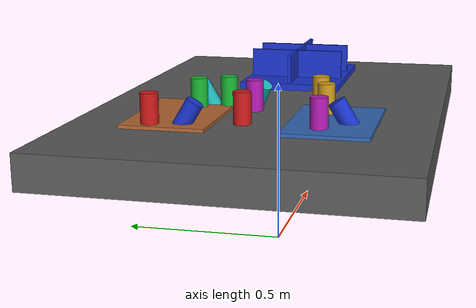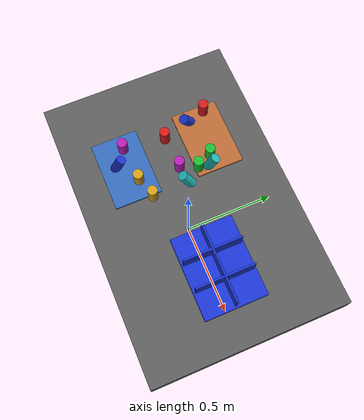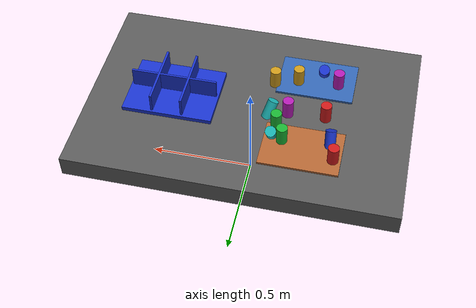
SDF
<?xml version="1.0" ?>
<sdf version="1.9">
  <!-- Standalone M1B scene.  The controller-backed Panda is spawned by the
       existing launch path; this file never alters the frozen M1A cube world. -->
  <world name="industrial_cylinder_v1">
    <physics name="bullet" type="bullet"><max_step_size>0.001</max_step_size><real_time_factor>1.0</real_time_factor></physics>
    <plugin name="gz::sim::systems::Physics" filename="gz-sim-physics-system"><engine><filename>gz-physics-bullet-featherstone-plugin</filename></engine></plugin>
    <plugin name="gz::sim::systems::UserCommands" filename="gz-sim-user-commands-system"/>
    <plugin name="gz::sim::systems::SceneBroadcaster" filename="gz-sim-scene-broadcaster-system"/>
    <plugin name="gz::sim::systems::Sensors" filename="gz-sim-sensors-system"><render_engine>ogre2</render_engine></plugin>
    <gravity>0 0 -9.81</gravity>
    <light type="directional" name="industrial_light"><pose>0 0 5 0 0 0</pose><direction>-0.3 0.2 -0.9</direction><diffuse>0.9 0.9 0.9 1</diffuse></light>
    <model name="industrial_work_table"><static>true</static><link name="link"><pose>0 0 0.4 0 0 0</pose><collision name="collision"><geometry><box><size>1.5 1.0 0.1</size></box></geometry></collision><visual name="visual"><geometry><box><size>1.5 1.0 0.1</size></box></geometry><material><diffuse>0.35 0.35 0.35 1</diffuse></material></visual></link></model>
    <model name="camera_fixture"><static>true</static><link name="camera_rgbd"><pose>-0.80 -0.80 1.40 0 0.77 0.93</pose><sensor name="front_rgbd" type="rgbd_camera"><always_on>1</always_on><update_rate>15</update_rate><topic>/xh/camera/rgbd</topic><camera><horizontal_fov>1.047</horizontal_fov><image><width>640</width><height>480</height><format>R8G8B8</format></image><clip><near>0.1</near><far>4.0</far></clip></camera></sensor></link></model>
    <model name="incoming_zone_a"><static>true</static><link name="link"><pose>-0.28 -0.22 0.455 0 0 0</pose><visual name="visual"><geometry><box><size>0.36 0.24 0.01</size></box></geometry><material><diffuse>0.2 0.4 0.7 1</diffuse></material></visual></link></model>
    <model name="incoming_zone_b"><static>true</static><link name="link"><pose>-0.28 0.22 0.455 0 0 0</pose><visual name="visual"><geometry><box><size>0.36 0.24 0.01</size></box></geometry><material><diffuse>0.7 0.4 0.2 1</diffuse></material></visual></link></model>
    <!-- M1B_RANDOM_PARTS_BEGIN -->
    <model name="cylinder_01"><pose>-0.4239 0.2613 0.5000 0.0000 0.0000 -0.9721</pose><link name="link"><inertial><mass>0.06</mass></inertial><collision name="collision"><geometry><cylinder><radius>0.025</radius><length>0.09</length></cylinder></geometry></collision><visual name="visual"><geometry><cylinder><radius>0.025</radius><length>0.09</length></cylinder></geometry><material><diffuse>0.800 0.100 0.100 1</diffuse><specular>0.15 0.15 0.15 1</specular></material></visual></link></model>
    <model name="cylinder_02"><pose>-0.1845 0.1948 0.5000 3.1416 0.0000 -0.9701</pose><link name="link"><inertial><mass>0.06</mass></inertial><collision name="collision"><geometry><cylinder><radius>0.025</radius><length>0.09</length></cylinder></geometry></collision><visual name="visual"><geometry><cylinder><radius>0.025</radius><length>0.09</length></cylinder></geometry><material><diffuse>0.100 0.700 0.200 1</diffuse><specular>0.15 0.15 0.15 1</specular></material></visual></link></model>
    <model name="cylinder_03"><pose>-0.3060 -0.2510 0.4800 0.4500 -0.3000 -2.5216</pose><link name="link"><inertial><mass>0.06</mass></inertial><collision name="collision"><geometry><cylinder><radius>0.025</radius><length>0.09</length></cylinder></geometry></collision><visual name="visual"><geometry><cylinder><radius>0.025</radius><length>0.09</length></cylinder></geometry><material><diffuse>0.100 0.200 0.800 1</diffuse><specular>0.15 0.15 0.15 1</specular></material></visual></link></model>
    <model name="cylinder_04"><pose>-0.0893 -0.1488 0.5000 0.0000 0.0000 -1.4084</pose><link name="link"><inertial><mass>0.06</mass></inertial><collision name="collision"><geometry><cylinder><radius>0.025</radius><length>0.09</length></cylinder></geometry></collision><visual name="visual"><geometry><cylinder><radius>0.025</radius><length>0.09</length></cylinder></geometry><material><diffuse>0.800 0.600 0.100 1</diffuse><specular>0.15 0.15 0.15 1</specular></material></visual></link></model>
    <model name="cylinder_05"><pose>-0.1819 0.0291 0.5000 3.1416 0.0000 -1.1908</pose><link name="link"><inertial><mass>0.06</mass></inertial><collision name="collision"><geometry><cylinder><radius>0.025</radius><length>0.09</length></cylinder></geometry></collision><visual name="visual"><geometry><cylinder><radius>0.025</radius><length>0.09</length></cylinder></geometry><material><diffuse>0.700 0.100 0.700 1</diffuse><specular>0.15 0.15 0.15 1</specular></material></visual></link></model>
    <model name="cylinder_06"><pose>-0.1359 0.1804 0.4800 0.4500 -0.3000 -2.6258</pose><link name="link"><inertial><mass>0.06</mass></inertial><collision name="collision"><geometry><cylinder><radius>0.025</radius><length>0.09</length></cylinder></geometry></collision><visual name="visual"><geometry><cylinder><radius>0.025</radius><length>0.09</length></cylinder></geometry><material><diffuse>0.100 0.700 0.700 1</diffuse><specular>0.15 0.15 0.15 1</specular></material></visual></link></model>
    <model name="cylinder_07"><pose>-0.3548 0.0215 0.5000 0.0000 0.0000 1.7572</pose><link name="link"><inertial><mass>0.06</mass></inertial><collision name="collision"><geometry><cylinder><radius>0.025</radius><length>0.09</length></cylinder></geometry></collision><visual name="visual"><geometry><cylinder><radius>0.025</radius><length>0.09</length></cylinder></geometry><material><diffuse>0.800 0.100 0.100 1</diffuse><specular>0.15 0.15 0.15 1</specular></material></visual></link></model>
    <model name="cylinder_08"><pose>-0.1438 0.1155 0.5000 3.1416 0.0000 0.7382</pose><link name="link"><inertial><mass>0.06</mass></inertial><collision name="collision"><geometry><cylinder><radius>0.025</radius><length>0.09</length></cylinder></geometry></collision><visual name="visual"><geometry><cylinder><radius>0.025</radius><length>0.09</length></cylinder></geometry><material><diffuse>0.100 0.700 0.200 1</diffuse><specular>0.15 0.15 0.15 1</specular></material></visual></link></model>
    <model name="cylinder_09"><pose>-0.3982 0.1641 0.4800 0.4500 -0.3000 0.6465</pose><link name="link"><inertial><mass>0.06</mass></inertial><collision name="collision"><geometry><cylinder><radius>0.025</radius><length>0.09</length></cylinder></geometry></collision><visual name="visual"><geometry><cylinder><radius>0.025</radius><length>0.09</length></cylinder></geometry><material><diffuse>0.100 0.200 0.800 1</diffuse><specular>0.15 0.15 0.15 1</specular></material></visual></link></model>
    <model name="cylinder_10"><pose>-0.1948 -0.1819 0.5000 0.0000 0.0000 -0.7311</pose><link name="link"><inertial><mass>0.06</mass></inertial><collision name="collision"><geometry><cylinder><radius>0.025</radius><length>0.09</length></cylinder></geometry></collision><visual name="visual"><geometry><cylinder><radius>0.025</radius><length>0.09</length></cylinder></geometry><material><diffuse>0.800 0.600 0.100 1</diffuse><specular>0.15 0.15 0.15 1</specular></material></visual></link></model>
    <model name="cylinder_11"><pose>-0.3816 -0.1940 0.5000 3.1416 0.0000 1.4309</pose><link name="link"><inertial><mass>0.06</mass></inertial><collision name="collision"><geometry><cylinder><radius>0.025</radius><length>0.09</length></cylinder></geometry></collision><visual name="visual"><geometry><cylinder><radius>0.025</radius><length>0.09</length></cylinder></geometry><material><diffuse>0.700 0.100 0.700 1</diffuse><specular>0.15 0.15 0.15 1</specular></material></visual></link></model>
    <model name="cylinder_12"><pose>-0.0996 0.0366 0.4800 0.4500 -0.3000 -0.0353</pose><link name="link"><inertial><mass>0.06</mass></inertial><collision name="collision"><geometry><cylinder><radius>0.025</radius><length>0.09</length></cylinder></geometry></collision><visual name="visual"><geometry><cylinder><radius>0.025</radius><length>0.09</length></cylinder></geometry><material><diffuse>0.100 0.700 0.700 1</diffuse><specular>0.15 0.15 0.15 1</specular></material></visual></link></model>
    <!-- M1B_RANDOM_PARTS_END -->
    <model name="blue_partition_bin"><static>true</static><pose>0.36 0 0.45 0 0 0</pose><link name="link"><collision name="floor"><pose>0 0 0.01 0 0 0</pose><geometry><box><size>0.42 0.32 0.02</size></box></geometry></collision><visual name="floor_visual"><pose>0 0 0.01 0 0 0</pose><geometry><box><size>0.42 0.32 0.02</size></box></geometry><material><diffuse>0.1 0.2 0.8 1</diffuse></material></visual><visual name="row_divider"><pose>0 0 0.06 0 0 0</pose><geometry><box><size>0.40 0.01 0.10</size></box></geometry><material><diffuse>0.1 0.2 0.8 1</diffuse></material></visual><visual name="col_divider_a"><pose>-0.07 0 0.06 0 0 0</pose><geometry><box><size>0.01 0.30 0.10</size></box></geometry><material><diffuse>0.1 0.2 0.8 1</diffuse></material></visual><visual name="col_divider_b"><pose>0.07 0 0.06 0 0 0</pose><geometry><box><size>0.01 0.30 0.10</size></box></geometry><material><diffuse>0.1 0.2 0.8 1</diffuse></material></visual></link></model>
    <!-- Reserved only: second table, bin transport corridor, stackable-bin
         collision volume, and second arm mounting namespace. -->
  </world>
</sdf>
